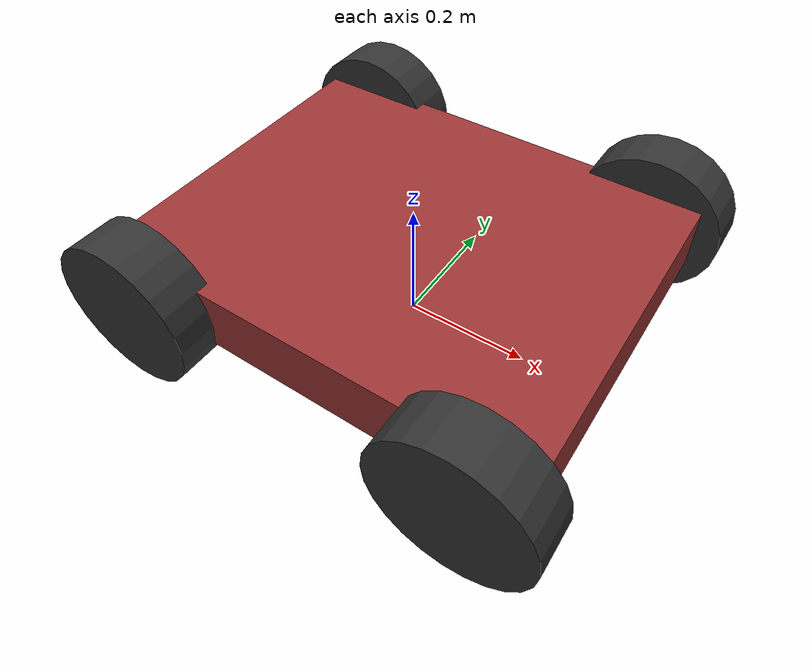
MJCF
<mujoco model="pusher_dummy_3d">
  <compiler angle="radian"/>
  <default>
    <geom rgba="0.6 0.2 0.2 1.0" friction="0.8 0.005 0.0001"/>
  </default>
  <worldbody>
    <body name="chassis" pos="0 0 0.13">
      <freejoint name="root"/>
      <geom name="body" type="box" size="0.35 0.28 0.05" density="2500" rgba="0.6 0.2 0.2 1"/>
      <body name="wfl" pos="0.27 0.30 -0.01">
        <joint name="j_fl" type="hinge" axis="0 1 0"/>
        <geom name="g_fl" type="cylinder" size="0.12 0.04" euler="1.5708 0 0" density="2500" rgba="0.2 0.2 0.2 1"/>
      </body>
      <body name="wfr" pos="0.27 -0.30 -0.01">
        <joint name="j_fr" type="hinge" axis="0 1 0"/>
        <geom name="g_fr" type="cylinder" size="0.12 0.04" euler="1.5708 0 0" density="2500" rgba="0.2 0.2 0.2 1"/>
      </body>
      <body name="wrl" pos="-0.27 0.30 -0.01">
        <joint name="j_rl" type="hinge" axis="0 1 0"/>
        <geom name="g_rl" type="cylinder" size="0.12 0.04" euler="1.5708 0 0" density="2500" rgba="0.2 0.2 0.2 1"/>
      </body>
      <body name="wrr" pos="-0.27 -0.30 -0.01">
        <joint name="j_rr" type="hinge" axis="0 1 0"/>
        <geom name="g_rr" type="cylinder" size="0.12 0.04" euler="1.5708 0 0" density="2500" rgba="0.2 0.2 0.2 1"/>
      </body>
    </body>
  </worldbody>
  <actuator>
    <motor name="m_fl" joint="j_fl" gear="50"/>
    <motor name="m_fr" joint="j_fr" gear="50"/>
    <motor name="m_rl" joint="j_rl" gear="50"/>
    <motor name="m_rr" joint="j_rr" gear="50"/>
  </actuator>
</mujoco>
